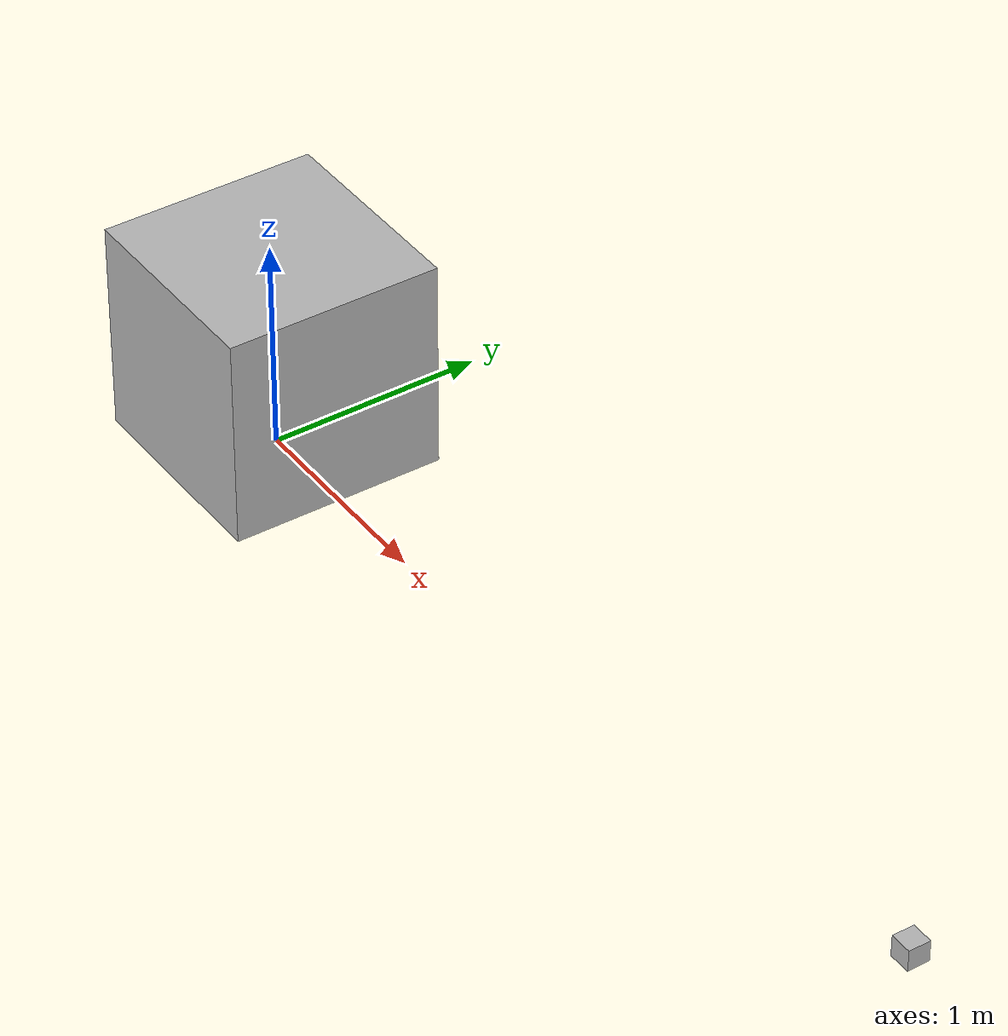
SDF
<?xml version="1.0" ?>
<sdf version="1.8">
  <world name="thermal_world">
    <!-- ambient light -->
    <scene>
      <ambient>0.3 0.3 0.3 1</ambient>
    </scene>

    <!-- static box at origin -->
    <model name="box_model">
      <static>true</static>
      <link name="link">
        <pose>0 0 0.5 0 0 0</pose>
        <collision name="collision">
          <geometry>
            <box>
              <size>1 1 1</size>
            </box>
          </geometry>
        </collision>
        <visual name="visual">
          <geometry>
            <box>
              <size>1 1 1</size>
            </box>
          </geometry>
        </visual>
      </link>
    </model>

    <!-- thermal camera mounted 2 m above box, pointing down -->
    <model name="thermal_camera_8bit">
      <pose>4.5 0 0.5 0.0 0.0 3.14</pose>
      <link name="link">
        <pose>0.05 0.05 0.05 0 0 0</pose>
        <collision name="collision">
          <geometry>
            <box>
              <size>0.1 0.1 0.1</size>
            </box>
          </geometry>
        </collision>
        <visual name="visual">
          <geometry>
            <box>
              <size>0.1 0.1 0.1</size>
            </box>
          </geometry>
        </visual>
        <sensor name="thermal_camera_8bit" type="thermal">
          <camera>
            <horizontal_fov>1.047</horizontal_fov>
            <image>
              <width>320</width>
              <height>240</height>
              <format>L8</format>
            </image>
            <clip>
              <near>0.1</near>
              <far>100</far>
            </clip>
          </camera>
          <always_on>1</always_on>
          <update_rate>30</update_rate>
          <visualize>true</visualize>
          <topic>thermal_camera_8bit/image</topic>
          <plugin
            filename="ignition-gazebo-thermal-sensor-system"
            name="gz::sim::systems::ThermalSensor">
            <min_temp>253.15</min_temp>
            <max_temp>673.15</max_temp>
            <resolution>3.0</resolution>
          </plugin>
        </sensor>
      </link>
      <static>true</static>
    </model>
  </world>
</sdf>
